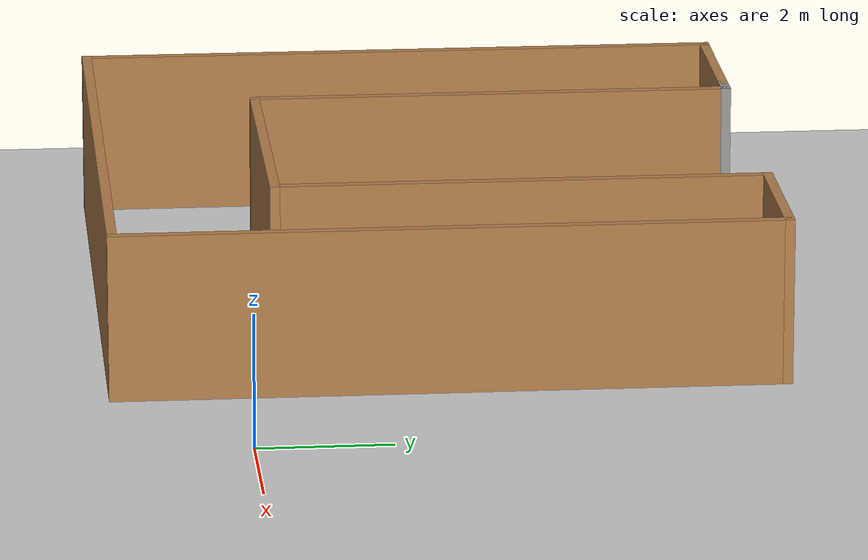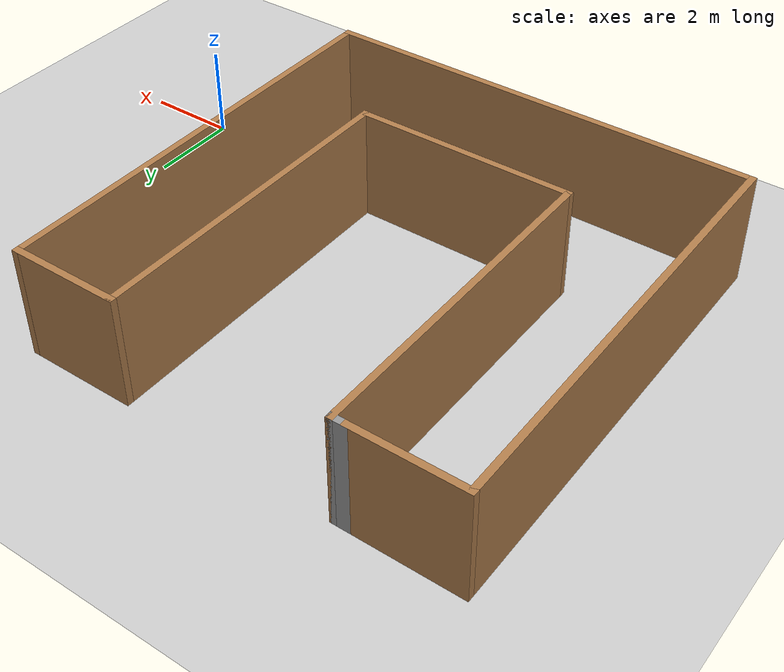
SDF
<?xml version='1.0'?>
<sdf version='1.6'>
  <world name='default'>
    <light name='sun' type='directional'>
      <cast_shadows>1</cast_shadows>
      <pose frame=''>0 0 10 0 -0 0</pose>
      <diffuse>0.8 0.8 0.8 1</diffuse>
      <specular>0.2 0.2 0.2 1</specular>
      <attenuation>
        <range>1000</range>
        <constant>0.9</constant>
        <linear>0.01</linear>
        <quadratic>0.001</quadratic>
      </attenuation>
      <direction>-0.5 0.1 -0.9</direction>
    </light>
    <model name='ground_plane'>
      <static>1</static>
      <link name='link'>
        <collision name='collision'>
          <geometry>
            <plane>
              <normal>0 0 1</normal>
              <size>100 100</size>
            </plane>
          </geometry>
          <surface>
            <friction>
              <ode>
                <mu>100</mu>
                <mu2>50</mu2>
              </ode>
            </friction>
          </surface>
        </collision>
        <visual name='visual'>
          <cast_shadows>0</cast_shadows>
          <geometry>
            <plane>
              <normal>0 0 1</normal>
              <size>100 100</size>
            </plane>
          </geometry>
          <material>
            <script>
              <uri>file://media/materials/scripts/gazebo.material</uri>
              <name>Gazebo/Grey</name>
            </script>
          </material>
        </visual>
      </link>
      <pose frame=''>-0.677367 -1.95399 0 0 -0 0</pose>
    </model>
    <model name='Untitled'>
      <pose frame=''>-7.30382 3.02593 0 0 -0 0</pose>
      <link name='Wall_35'>
        <collision name='Wall_35_Collision'>
          <geometry>
            <box>
              <size>2.5 0.15 2.5</size>
            </box>
          </geometry>
          <pose frame=''>0 0 1.25 0 -0 0</pose>
        </collision>
        <visual name='Wall_35_Visual'>
          <pose frame=''>0 0 1.25 0 -0 0</pose>
          <geometry>
            <box>
              <size>2.5 0.15 2.5</size>
            </box>
          </geometry>
          <material>
            <script>
              <uri>file://media/materials/scripts/gazebo.material</uri>
              <name>Gazebo/Wood</name>
            </script>
            <ambient>1 1 1 1</ambient>
          </material>
          <meta>
            <layer>0</layer>
          </meta>
        </visual>
        <pose frame=''>-3.75 4.925 0 0 -0 3.14159</pose>
      </link>
      <link name='Wall_37'>
        <collision name='Wall_37_Collision'>
          <geometry>
            <box>
              <size>10 0.15 2.5</size>
            </box>
          </geometry>
          <pose frame=''>0 0 1.25 0 -0 0</pose>
        </collision>
        <visual name='Wall_37_Visual'>
          <pose frame=''>0 0 1.25 0 -0 0</pose>
          <geometry>
            <box>
              <size>10 0.15 2.5</size>
            </box>
          </geometry>
          <material>
            <script>
              <uri>file://media/materials/scripts/gazebo.material</uri>
              <name>Gazebo/Wood</name>
            </script>
            <ambient>1 1 1 1</ambient>
          </material>
          <meta>
            <layer>0</layer>
          </meta>
        </visual>
        <pose frame=''>-4.925 -0 0 0 -0 -1.5708</pose>
      </link>
      <link name='Wall_38'>
        <collision name='Wall_38_Collision'>
          <geometry>
            <box>
              <size>10 0.15 2.5</size>
            </box>
          </geometry>
          <pose frame=''>0 0 1.25 0 -0 0</pose>
        </collision>
        <visual name='Wall_38_Visual'>
          <pose frame=''>0 0 1.25 0 -0 0</pose>
          <geometry>
            <box>
              <size>10 0.15 2.5</size>
            </box>
          </geometry>
          <material>
            <script>
              <uri>file://media/materials/scripts/gazebo.material</uri>
              <name>Gazebo/Wood</name>
            </script>
            <ambient>1 1 1 1</ambient>
          </material>
          <meta>
            <layer>0</layer>
          </meta>
        </visual>
        <pose frame=''>-0 -4.925 0 0 -0 0</pose>
      </link>
      <link name='Wall_39'>
        <collision name='Wall_39_Collision'>
          <geometry>
            <box>
              <size>10 0.15 2.5</size>
            </box>
          </geometry>
          <pose frame=''>0 0 1.25 0 -0 0</pose>
        </collision>
        <visual name='Wall_39_Visual'>
          <pose frame=''>0 0 1.25 0 -0 0</pose>
          <geometry>
            <box>
              <size>10 0.15 2.5</size>
            </box>
          </geometry>
          <material>
            <script>
              <uri>file://media/materials/scripts/gazebo.material</uri>
              <name>Gazebo/Wood</name>
            </script>
            <ambient>1 1 1 1</ambient>
          </material>
          <meta>
            <layer>0</layer>
          </meta>
        </visual>
        <pose frame=''>4.925 -0 0 0 -0 1.5708</pose>
      </link>
      <link name='Wall_43'>
        <collision name='Wall_43_Collision'>
          <geometry>
            <box>
              <size>2.5 0.15 2.5</size>
            </box>
          </geometry>
          <pose frame=''>0 0 1.25 0 -0 0</pose>
        </collision>
        <visual name='Wall_43_Visual'>
          <pose frame=''>0 0 1.25 0 -0 0</pose>
          <geometry>
            <box>
              <size>2.5 0.15 2.5</size>
            </box>
          </geometry>
          <material>
            <script>
              <uri>file://media/materials/scripts/gazebo.material</uri>
              <name>Gazebo/Wood</name>
            </script>
            <ambient>1 1 1 1</ambient>
          </material>
          <meta>
            <layer>0</layer>
          </meta>
        </visual>
        <pose frame=''>3.75 4.925 0 0 -0 3.14159</pose>
      </link>
      <link name='Wall_44'>
        <collision name='Wall_44_Collision'>
          <geometry>
            <box>
              <size>7.5 0.15 2.5</size>
            </box>
          </geometry>
          <pose frame=''>0 0 1.25 0 -0 0</pose>
        </collision>
        <visual name='Wall_44_Visual'>
          <pose frame=''>0 0 1.25 0 -0 0</pose>
          <geometry>
            <box>
              <size>7.5 0.15 2.5</size>
            </box>
          </geometry>
          <material>
            <script>
              <uri>file://media/materials/scripts/gazebo.material</uri>
              <name>Gazebo/Wood</name>
            </script>
            <ambient>1 1 1 1</ambient>
          </material>
          <meta>
            <layer>0</layer>
          </meta>
        </visual>
        <pose frame=''>2.575 1.25 0 0 -0 -1.5708</pose>
      </link>
      <link name='Wall_45'>
        <collision name='Wall_45_Collision'>
          <geometry>
            <box>
              <size>5 0.15 2.5</size>
            </box>
          </geometry>
          <pose frame=''>0 0 1.25 0 -0 0</pose>
        </collision>
        <visual name='Wall_45_Visual'>
          <pose frame=''>0 0 1.25 0 -0 0</pose>
          <geometry>
            <box>
              <size>5 0.15 2.5</size>
            </box>
          </geometry>
          <material>
            <script>
              <uri>file://media/materials/scripts/gazebo.material</uri>
              <name>Gazebo/Wood</name>
            </script>
            <ambient>1 1 1 1</ambient>
          </material>
          <meta>
            <layer>0</layer>
          </meta>
        </visual>
        <pose frame=''>0.15 -2.425 0 0 -0 3.14159</pose>
      </link>
      <link name='Wall_46'>
        <collision name='Wall_46_Collision'>
          <geometry>
            <box>
              <size>7.5 0.15 2.5</size>
            </box>
          </geometry>
          <pose frame=''>0 0 1.25 0 -0 0</pose>
        </collision>
        <visual name='Wall_46_Visual'>
          <pose frame=''>0 0 1.25 0 -0 0</pose>
          <geometry>
            <box>
              <size>7.5 0.15 2.5</size>
            </box>
          </geometry>
          <material>
            <script>
              <uri>file://media/materials/scripts/gazebo.material</uri>
              <name>Gazebo/Wood</name>
            </script>
            <ambient>1 1 1 1</ambient>
          </material>
          <meta>
            <layer>0</layer>
          </meta>
        </visual>
        <pose frame=''>-2.275 1.25 0 0 -0 1.5708</pose>
      </link>
      <link name='Wall_47'>
        <collision name='Wall_47_Collision'>
          <geometry>
            <box>
              <size>0.15 0.15 2.5</size>
            </box>
          </geometry>
          <pose frame=''>0 0 1.25 0 -0 0</pose>
        </collision>
        <visual name='Wall_47_Visual'>
          <pose frame=''>0 0 1.25 0 -0 0</pose>
          <geometry>
            <box>
              <size>0.15 0.15 2.5</size>
            </box>
          </geometry>
          <material>
            <script>
              <uri>file://media/materials/scripts/gazebo.material</uri>
              <name>Gazebo/Grey</name>
            </script>
            <ambient>1 1 1 1</ambient>
          </material>
          <meta>
            <layer>0</layer>
          </meta>
        </visual>
        <pose frame=''>-2.275 4.925 0 0 -0 0</pose>
      </link>
      <link name='Wall_48'>
        <collision name='Wall_48_Collision'>
          <geometry>
            <box>
              <size>0.45 0.15 2.5</size>
            </box>
          </geometry>
          <pose frame=''>0 0 1.25 0 -0 0</pose>
        </collision>
        <visual name='Wall_48_Visual'>
          <pose frame=''>0 0 1.25 0 -0 0</pose>
          <geometry>
            <box>
              <size>0.45 0.15 2.5</size>
            </box>
          </geometry>
          <material>
            <script>
              <uri>file://media/materials/scripts/gazebo.material</uri>
              <name>Gazebo/Grey</name>
            </script>
            <ambient>1 1 1 1</ambient>
          </material>
          <meta>
            <layer>0</layer>
          </meta>
        </visual>
        <pose frame=''>-2.425 4.925 0 0 -0 3.14159</pose>
      </link>
      <static>1</static>
    </model>

    <gui fullscreen='0'>
    <camera name='user_camera'>
      <pose frame=''>18.8656 -84.9325 111.316 0 1.0098 1.72019</pose>
      <view_controller>orbit</view_controller>
      <projection_type>perspective</projection_type>
    </camera>
  </gui>
</world>
</sdf>
